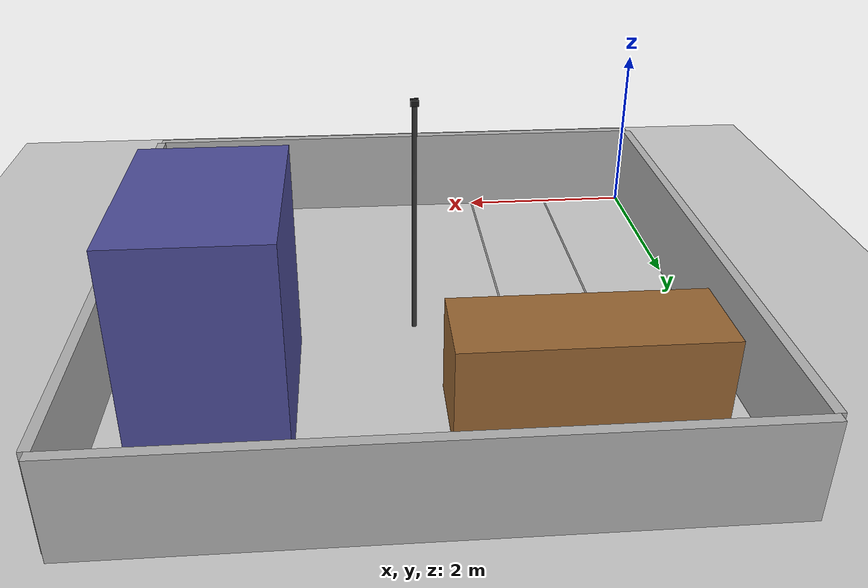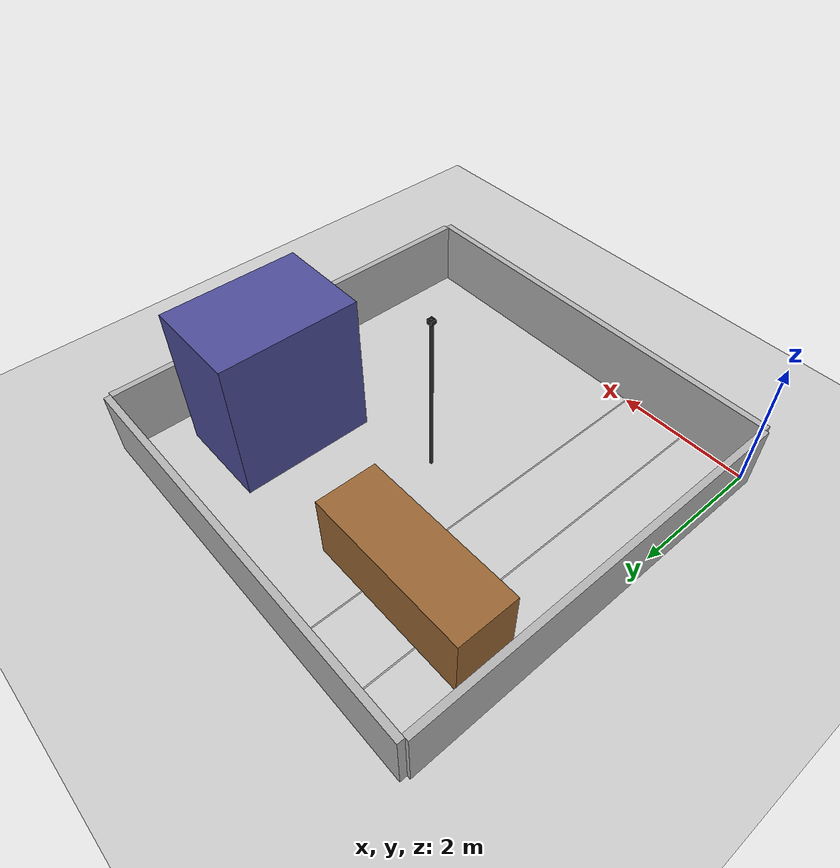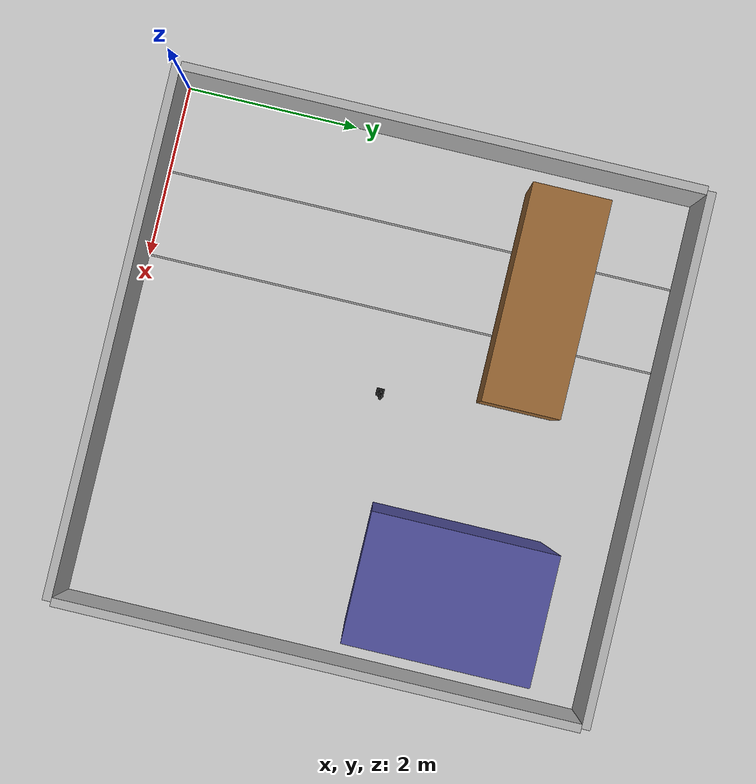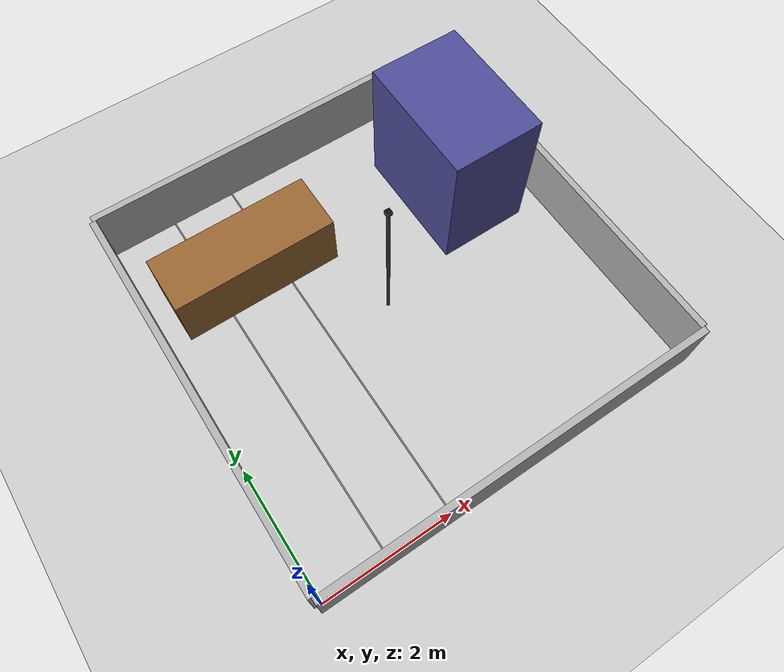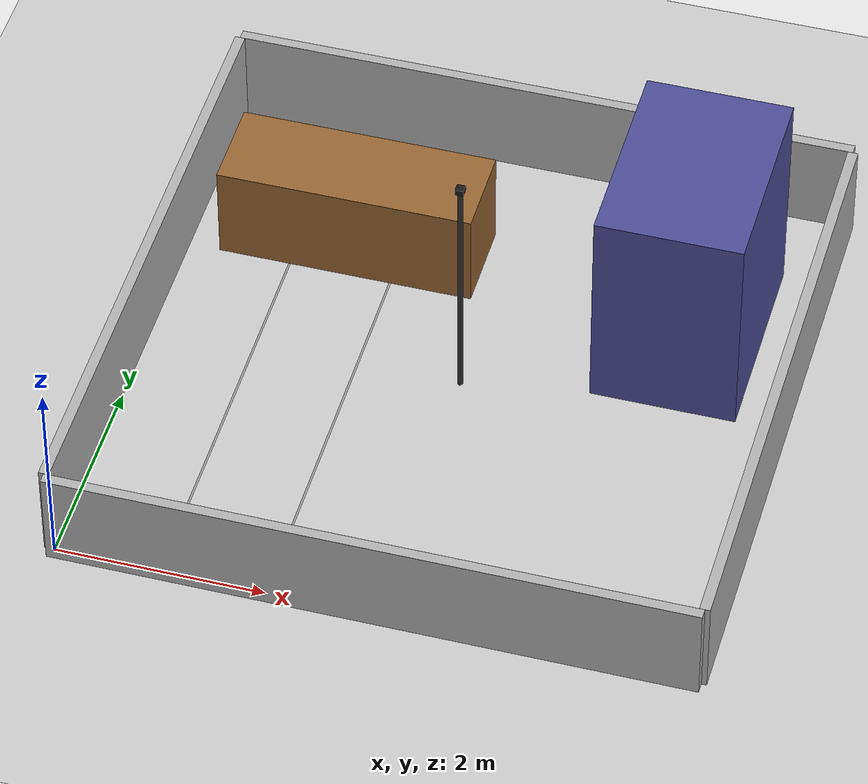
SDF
<?xml version="1.0" ?>
<sdf version="1.6">
  <world name="shopfloor_world">

    <!-- ===== PHYSICS ===== -->
    <physics name="default_physics" default="0" type="ode">
      <max_step_size>0.001</max_step_size>
      <real_time_factor>1</real_time_factor>
      <real_time_update_rate>1000</real_time_update_rate>
      <ode>
        <solver>
          <type>quick</type>
          <iters>150</iters>
          <precon_iters>0</precon_iters>
          <sor>1.400000</sor>
        </solver>
        <constraints>
          <cfm>0.00001</cfm>
          <erp>0.2</erp>
          <contact_max_correcting_vel>2000.000000</contact_max_correcting_vel>
          <contact_surface_layer>0.01000</contact_surface_layer>
        </constraints>
      </ode>
    </physics>

    <!-- ===== SCENE LIGHTING ===== -->
    <scene>
      <ambient>0.8 0.8 0.8 1.0</ambient>
      <background>0.5 0.5 0.5 1.0</background>
      <shadows>0</shadows>
    </scene>

    <light name="sun" type="directional">
      <cast_shadows>0</cast_shadows>
      <pose>0 0 10 0 0 0</pose>
      <diffuse>1.0 1.0 1.0 1</diffuse>
      <specular>0.1 0.1 0.1 1</specular>
      <direction>0.0 0.0 -1.0</direction>
    </light>

    <light name="overhead_fill" type="point">
      <pose>3 3 4 0 0 0</pose>
      <diffuse>0.8 0.8 0.8 1</diffuse>
      <specular>0.1 0.1 0.1 1</specular>
      <attenuation>
        <range>20</range>
        <constant>0.2</constant>
        <linear>0.01</linear>
        <quadratic>0.001</quadratic>
      </attenuation>
    </light>

    <!-- ===== GROUND PLANE ===== -->
    <model name="ground_plane">
      <static>true</static>
      <link name="link">
        <collision name="collision">
          <geometry>
            <plane>
              <normal>0 0 1</normal>
              <size>20 20</size>
            </plane>
          </geometry>
          <surface>
            <friction>
              <ode>
                <mu>100</mu>
                <mu2>50</mu2>
              </ode>
            </friction>
          </surface>
        </collision>
        <visual name="visual">
          <cast_shadows>false</cast_shadows>
          <geometry>
            <plane>
              <normal>0 0 1</normal>
              <size>20 20</size>
            </plane>
          </geometry>
          <material>
            <script>
              <uri>file://media/materials/scripts/gazebo.material</uri>
              <name>Gazebo/Grey</name>
            </script>
          </material>
        </visual>
      </link>
    </model>

    <!-- ===== WORKSPACE BOUNDARY WALLS ===== -->
    <!-- Bottom wall (y=0) -->
    <model name="wall_bottom">
      <static>true</static>
      <pose>3 -0.05 0.5 0 0 0</pose>
      <link name="link">
        <collision name="collision">
          <geometry><box><size>6.1 0.1 1.0</size></box></geometry>
        </collision>
        <visual name="visual">
          <geometry><box><size>6.1 0.1 1.0</size></box></geometry>
          <material>
            <ambient>0.7 0.7 0.7 1</ambient>
            <diffuse>0.7 0.7 0.7 1</diffuse>
          </material>
        </visual>
      </link>
    </model>

    <!-- Top wall (y=6) -->
    <model name="wall_top">
      <static>true</static>
      <pose>3 6.05 0.5 0 0 0</pose>
      <link name="link">
        <collision name="collision">
          <geometry><box><size>6.1 0.1 1.0</size></box></geometry>
        </collision>
        <visual name="visual">
          <geometry><box><size>6.1 0.1 1.0</size></box></geometry>
          <material>
            <ambient>0.7 0.7 0.7 1</ambient>
            <diffuse>0.7 0.7 0.7 1</diffuse>
          </material>
        </visual>
      </link>
    </model>

    <!-- Left wall (x=0) -->
    <model name="wall_left">
      <static>true</static>
      <pose>-0.05 3 0.5 0 0 0</pose>
      <link name="link">
        <collision name="collision">
          <geometry><box><size>0.1 6.0 1.0</size></box></geometry>
        </collision>
        <visual name="visual">
          <geometry><box><size>0.1 6.0 1.0</size></box></geometry>
          <material>
            <ambient>0.7 0.7 0.7 1</ambient>
            <diffuse>0.7 0.7 0.7 1</diffuse>
          </material>
        </visual>
      </link>
    </model>

    <!-- Right wall (x=6) -->
    <model name="wall_right">
      <static>true</static>
      <pose>6.05 3 0.5 0 0 0</pose>
      <link name="link">
        <collision name="collision">
          <geometry><box><size>0.1 6.0 1.0</size></box></geometry>
        </collision>
        <visual name="visual">
          <geometry><box><size>0.1 6.0 1.0</size></box></geometry>
          <material>
            <ambient>0.7 0.7 0.7 1</ambient>
            <diffuse>0.7 0.7 0.7 1</diffuse>
          </material>
        </visual>
      </link>
    </model>

    <!-- ===== OBSTACLE 1: Low table (top-left region) ===== -->
    <!-- 2.5m x 0.9m x 1.0m, positioned near top-left -->
    <model name="obstacle_1_table">
      <static>true</static>
      <pose>1.55 4.55 0.5 0 0 0</pose>
      <link name="link">
        <collision name="collision">
          <geometry><box><size>2.5 0.9 1.0</size></box></geometry>
        </collision>
        <visual name="visual">
          <geometry><box><size>2.5 0.9 1.0</size></box></geometry>
          <material>
            <ambient>0.6 0.4 0.2 1</ambient>
            <diffuse>0.6 0.4 0.2 1</diffuse>
            <specular>0.1 0.1 0.1 1</specular>
          </material>
        </visual>
      </link>
    </model>

    <!-- ===== OBSTACLE 2: Tall equipment (top-right region) ===== -->
    <!-- 1.4m x 2.0m x 2.2m, offset 0.8m from boundary -->
    <model name="obstacle_2_equipment">
      <static>true</static>
      <pose>4.9 4.2 1.1 0 0 0</pose>
      <link name="link">
        <collision name="collision">
          <geometry><box><size>1.4 2.0 2.2</size></box></geometry>
        </collision>
        <visual name="visual">
          <geometry><box><size>1.4 2.0 2.2</size></box></geometry>
          <material>
            <ambient>0.3 0.3 0.6 1</ambient>
            <diffuse>0.3 0.3 0.6 1</diffuse>
            <specular>0.2 0.2 0.2 1</specular>
          </material>
        </visual>
      </link>
    </model>

    <!-- ===== FLOOR GRID MARKERS (visual only) ===== -->
    <!-- Grid lines to help visualise 1m spacing - applied as flat boxes -->
    <model name="floor_marker_x1">
      <static>true</static>
      <pose>1.0 3.0 0.001 0 0 0</pose>
      <link name="link">
        <visual name="visual">
          <geometry><box><size>0.02 6.0 0.001</size></box></geometry>
          <material><ambient>0.5 0.5 0.5 0.5</ambient></material>
        </visual>
      </link>
    </model>

    <model name="floor_marker_x2">
      <static>true</static>
      <pose>2.0 3.0 0.001 0 0 0</pose>
      <link name="link">
        <visual name="visual">
          <geometry><box><size>0.02 6.0 0.001</size></box></geometry>
          <material><ambient>0.5 0.5 0.5 0.5</ambient></material>
        </visual>
      </link>
    </model>

    <!-- ===== OVERHEAD CAMERA STRUCTURE ===== -->
    <!-- Camera mounting pole at center of workspace -->
    <model name="camera_pole">
      <static>true</static>
      <pose>3.0 3.0 1.275 0 0 0</pose>
      <link name="link">
        <visual name="visual">
          <geometry><cylinder><radius>0.025</radius><length>2.55</length></cylinder></geometry>
          <material><ambient>0.2 0.2 0.2 1</ambient></material>
        </visual>
      </link>
    </model>

    <!-- Camera body -->
    <model name="camera_housing">
      <static>true</static>
      <pose>3.0 3.0 2.52 0 0 0</pose>
      <link name="link">
        <visual name="visual">
          <geometry><box><size>0.08 0.08 0.06</size></box></geometry>
          <material><ambient>0.1 0.1 0.1 1</ambient></material>
        </visual>
      </link>
    </model>

    <!-- ===== CAMERA SENSOR MODEL ===== -->
    <model name="overhead_camera">
      <static>true</static>
      <pose>3.0 3.0 2.55 0 1.5707963 0</pose>
      <link name="camera_link">
        <inertial>
          <mass>0.1</mass>
          <inertia><ixx>0.0001</ixx><ixy>0</ixy><ixz>0</ixz>
            <iyy>0.0001</iyy><iyz>0</iyz><izz>0.0001</izz></inertia>
        </inertial>
        <sensor name="overhead_cam_sensor" type="camera">
          <pose>0 0 0 0 0 0</pose>
          <always_on>true</always_on>
          <update_rate>30.0</update_rate>
          <visualize>true</visualize>
          <camera name="overhead_cam">
            <horizontal_fov>1.9199</horizontal_fov>  <!-- ~110 degrees -->
            <image>
              <width>1280</width>
              <height>720</height>
              <format>R8G8B8</format>
            </image>
            <clip>
              <near>0.05</near>
              <far>20.0</far>
            </clip>
            <noise>
              <type>gaussian</type>
              <mean>0.0</mean>
              <stddev>0.005</stddev>
            </noise>
            <distortion>
              <k1>0.0</k1>
              <k2>0.0</k2>
              <k3>0.0</k3>
              <p1>0.0</p1>
              <p2>0.0</p2>
            </distortion>
          </camera>
          <plugin name="overhead_camera_plugin" filename="libgazebo_ros_camera.so">
            <ros>
              <namespace>/overhead_camera</namespace>
              <remapping>image_raw:=image_raw</remapping>
              <remapping>camera_info:=camera_info</remapping>
            </ros>
            <camera_name>overhead_cam</camera_name>
            <frame_name>overhead_camera_optical_frame</frame_name>
            <hack_baseline>0</hack_baseline>
          </plugin>
        </sensor>
      </link>
    </model>

  </world>
</sdf>
